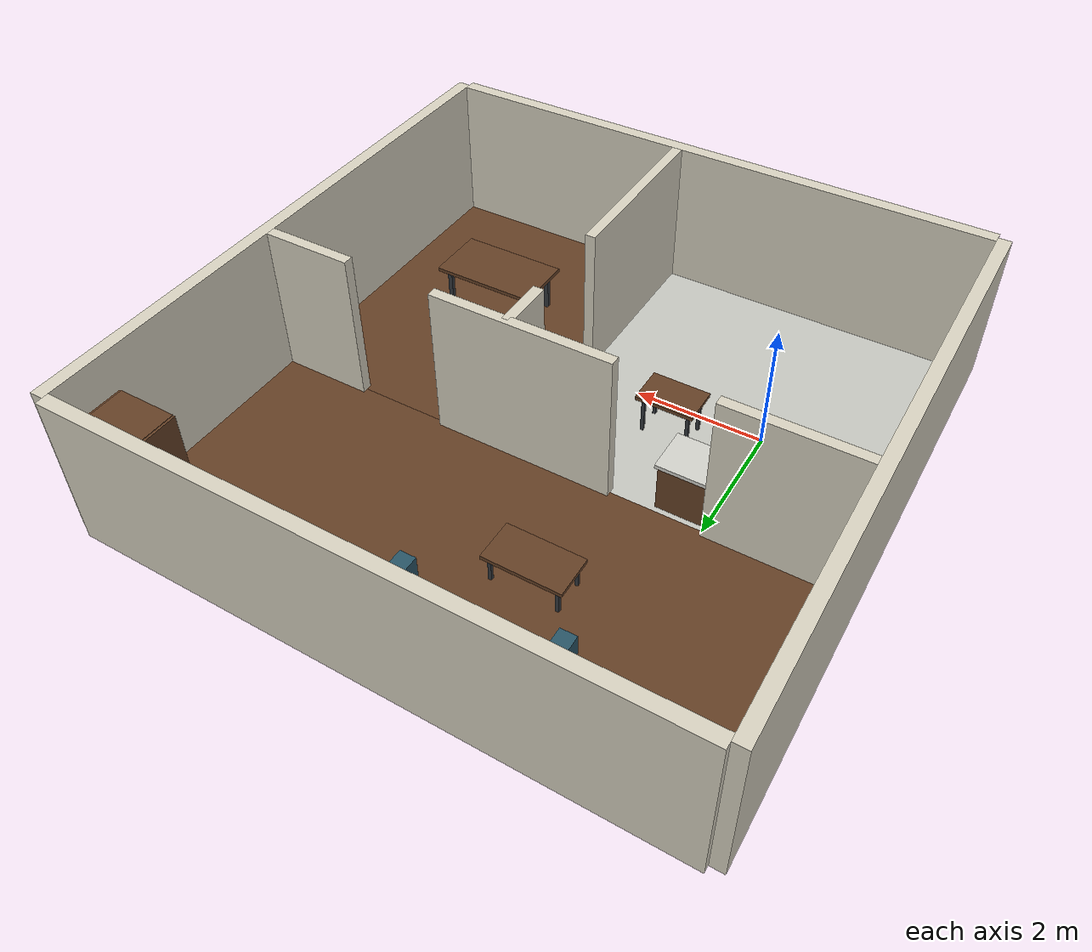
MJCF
<mujoco model="handy101_robocasa_home">
  <asset>
    <texture name="home_wood" type="2d" builtin="checker" width="256" height="256" rgb1=".36 .22 .12" rgb2=".42 .28 .17"/>
    <material name="home_wood" texture="home_wood" texrepeat="4 1" texuniform="true"/>
    <texture name="home_tiles" type="2d" builtin="checker" width="256" height="256" rgb1=".72 .73 .70" rgb2=".82 .82 .79"/>
    <material name="home_tiles" texture="home_tiles" texrepeat="4 4" texuniform="true"/>
    <material name="home_wall" rgba=".84 .82 .75 1"/>
    <material name="home_metal" rgba=".19 .21 .23 1" specular=".65"/>
    <material name="home_fabric" rgba=".16 .33 .40 1"/>
    <material name="home_counter" rgba=".82 .82 .79 1"/>
  </asset>
  <default>
    <default class="home_solid"><geom contype="2" conaffinity="3" friction=".9 .005 .0001" condim="4"/></default>
    <default class="home_visual"><geom contype="0" conaffinity="0" group="2"/></default>
  </default>
  <worldbody>
    <light name="home_kitchen_light" pos="0 0 2.5" diffuse=".9 .85 .75"/>
    <light name="home_dining_light" pos="5 -1 2.5" diffuse=".8 .85 .9"/>
    <light name="home_living_light" pos="2 4 2.5" diffuse=".85 .82 .8"/>
    <geom name="kitchen_floor" type="box" pos=".5 -.5 -.035" size="2.5 2.5 .035" material="home_tiles" class="home_solid"/>
    <geom name="dining_floor" type="box" pos="5 -.5 -.035" size="2 2.5 .035" material="home_wood" class="home_solid"/>
    <geom name="living_floor" type="box" pos="2.5 4 -.035" size="4.5 2 .035" material="home_wood" class="home_solid"/>
    <geom name="wall_west" type="box" pos="-2.1 1.5 1.2" size=".1 4.6 1.2" material="home_wall" class="home_solid"/>
    <geom name="wall_east" type="box" pos="7.1 1.5 1.2" size=".1 4.6 1.2" material="home_wall" class="home_solid"/>
    <geom name="wall_south" type="box" pos="2.5 -3.1 1.2" size="4.5 .1 1.2" material="home_wall" class="home_solid"/>
    <geom name="wall_north" type="box" pos="2.5 6.1 1.2" size="4.5 .1 1.2" material="home_wall" class="home_solid"/>
    <geom name="kitchen_dining_wall_a" type="box" pos="3 -1.6 1.2" size=".08 1.4 1.2" material="home_wall" class="home_solid"/>
    <geom name="kitchen_dining_wall_b" type="box" pos="3 1.6 1.2" size=".08 .4 1.2" material="home_wall" class="home_solid"/>
    <geom name="living_wall_a" type="box" pos="-1 2 1.2" size="1 .08 1.2" material="home_wall" class="home_solid"/>
    <geom name="living_wall_b" type="box" pos="2.8 2 1.2" size="1.4 .08 1.2" material="home_wall" class="home_solid"/>
    <geom name="living_wall_c" type="box" pos="6.3 2 1.2" size=".7 .08 1.2" material="home_wall" class="home_solid"/>
    <body name="home_prep_table" pos="1.25 .45 0">
      <geom type="box" pos="0 0 .64" size=".45 .3 .03" material="home_wood" class="home_solid"/>
      <geom type="box" pos="-.35 -.2 .305" size=".025 .025 .305" material="home_metal" class="home_solid"/>
      <geom type="box" pos=".35 -.2 .305" size=".025 .025 .305" material="home_metal" class="home_solid"/>
      <geom type="box" pos="-.35 .2 .305" size=".025 .025 .305" material="home_metal" class="home_solid"/>
      <geom type="box" pos=".35 .2 .305" size=".025 .025 .305" material="home_metal" class="home_solid"/>
    </body>
    <body name="home_counter" pos=".15 1.6 0">
      <geom type="box" pos="0 0 .38" size=".6 .32 .38" material="home_wood" class="home_solid"/>
      <geom type="box" pos="0 0 .79" size=".64 .35 .03" material="home_counter" class="home_solid"/>
      <geom type="box" pos="-.28 -.33 .45" size=".25 .015 .28" rgba=".7 .72 .69 1" class="home_visual"/>
      <geom type="box" pos=".28 -.33 .45" size=".25 .015 .28" rgba=".7 .72 .69 1" class="home_visual"/>
      <geom type="capsule" fromto="-.1 -.37 .38 -.1 -.37 .52" size=".012" material="home_metal" class="home_visual"/>
      <geom type="capsule" fromto=".1 -.37 .38 .1 -.37 .52" size=".012" material="home_metal" class="home_visual"/>
    </body>
    <body name="home_dining_table" pos="5 -.8 0">
      <geom type="box" pos="0 0 .69" size=".85 .48 .03" material="home_wood" class="home_solid"/>
      <geom type="box" pos="-.7 -.35 .33" size=".035 .035 .33" material="home_metal" class="home_solid"/>
      <geom type="box" pos=".7 -.35 .33" size=".035 .035 .33" material="home_metal" class="home_solid"/>
      <geom type="box" pos="-.7 .35 .33" size=".035 .035 .33" material="home_metal" class="home_solid"/>
      <geom type="box" pos=".7 .35 .33" size=".035 .035 .33" material="home_metal" class="home_solid"/>
    </body>
    <body name="home_sofa" pos="1.5 5.35 0">
      <geom type="box" pos="0 0 .23" size="1.05 .4 .23" rgba=".10 .17 .21 1" class="home_solid"/>
      <geom type="box" pos="-.52 0 .5" size=".5 .37 .1" material="home_fabric" class="home_solid"/>
      <geom type="box" pos=".52 0 .5" size=".5 .37 .1" material="home_fabric" class="home_solid"/>
      <geom type="box" pos="0 .35 .76" size="1.05 .12 .35" material="home_fabric" class="home_solid"/>
      <geom type="box" pos="-1.12 0 .65" size=".12 .45 .3" material="home_fabric" class="home_solid"/>
      <geom type="box" pos="1.12 0 .65" size=".12 .45 .3" material="home_fabric" class="home_solid"/>
    </body>
    <body name="home_coffee_table" pos="1.5 3.85 0">
      <geom type="box" pos="0 0 .44" size=".6 .32 .03" material="home_wood" class="home_solid"/>
      <geom type="box" pos="-.5 -.24 .205" size=".025 .025 .205" material="home_metal" class="home_solid"/>
      <geom type="box" pos=".5 -.24 .205" size=".025 .025 .205" material="home_metal" class="home_solid"/>
      <geom type="box" pos="-.5 .24 .205" size=".025 .025 .205" material="home_metal" class="home_solid"/>
      <geom type="box" pos=".5 .24 .205" size=".025 .025 .205" material="home_metal" class="home_solid"/>
    </body>
    <body name="home_bookshelf" pos="6.45 5.4 0">
      <geom type="box" pos="-.45 0 .9" size=".035 .28 .9" material="home_wood" class="home_solid"/>
      <geom type="box" pos=".45 0 .9" size=".035 .28 .9" material="home_wood" class="home_solid"/>
      <geom type="box" pos="0 .25 .9" size=".45 .03 .9" material="home_wood" class="home_solid"/>
      <geom type="box" pos="0 0 .15" size=".45 .28 .03" material="home_wood" class="home_solid"/>
      <geom type="box" pos="0 0 .55" size=".45 .28 .03" material="home_wood" class="home_solid"/>
      <geom type="box" pos="0 0 .95" size=".45 .28 .03" material="home_wood" class="home_solid"/>
      <geom type="box" pos="0 0 1.35" size=".45 .28 .03" material="home_wood" class="home_solid"/>
      <geom type="box" pos="0 0 1.78" size=".45 .28 .03" material="home_wood" class="home_solid"/>
    </body>
  </worldbody>
</mujoco>
